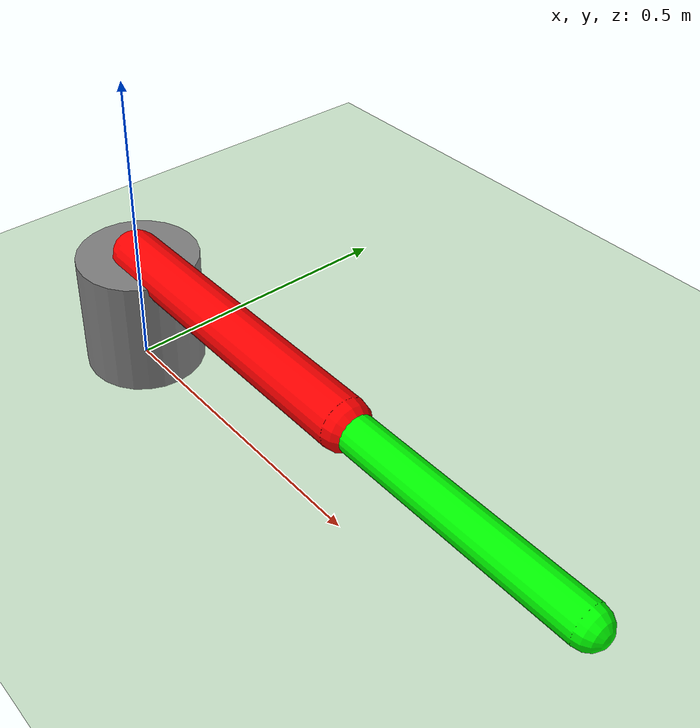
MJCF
<mujoco model="2dof_arm_vision">
    <option gravity="0 0 -9.81" timestep="0.002" />

    <worldbody>
        <light pos="0 0 3" dir="0 0 -1" />
        <geom name="floor" type="plane" size="5 5 0.1" rgba="0.8 0.9 0.8 1" />

        <!-- 1. 고정 카메라 (Fixed View): 로봇 베이스를 정중앙에 두도록 설정 -->
        <camera name="Fixed View" pos="1.2 -1.2 1.0" mode="targetbody" target="base" />
        <!-- 2. 탑 뷰 카메라 (Top View): 위에서 타겟(mocap)을 수직으로 추적 -->
        <camera name="Top View" pos="0.45 0 1.5" mode="targetbody" target="target" />

        <!-- 로봇 베이스 -->
        <body name="base" pos="0 0 0.1">
            <geom type="cylinder" size="0.1 0.1" rgba="0.5 0.5 0.5 1" />

            <!-- 첫 번째 링크 (어깨) -->
            <body name="link1" pos="0 0 0.1">
                <joint name="joint1" type="hinge" axis="0 0 1" damping="2.0" />
                <geom type="capsule" fromto="0 0 0 0.5 0 0" size="0.04" rgba="1 0 0 1" />

                <!-- 두 번째 링크 (팔꿈치) -->
                <body name="link2" pos="0.5 0 0">
                    <joint name="joint2" type="hinge" axis="0 0 1" damping="2.0" />
                    <geom type="capsule" fromto="0 0 0 0.4 0 0" size="0.03" rgba="0 1 0 1" />
                    <site name="ee" pos="0.4 0 0" size="0.01" rgba="1 1 0 1" />

                    <!-- 3. 1인칭 카메라 (Hand View): 로봇 팔 끝에 부착되어 타겟(mocap)을 항상 바라봄 -->
                    <camera name="Hand View" pos="0.1 0 0.2" mode="targetbody" target="target" />
                </body>
            </body>
        </body>

        <!-- 상호작용 타겟 -->
        <body name="target" mocap="true" pos="0.5 0.0 0.2">
            <geom type="sphere" size="0.03" rgba="1 1 1 0.5" contype="0" conaffinity="0" />
        </body>
    </worldbody>

    <actuator>
        <position name="arm_pos1" joint="joint1" kp="500" />
        <position name="arm_pos2" joint="joint2" kp="500" />
    </actuator>
</mujoco>
